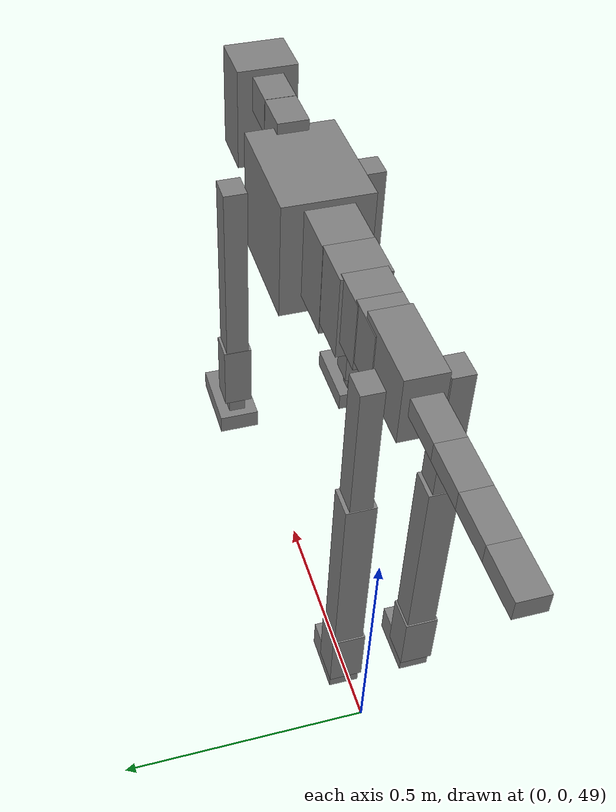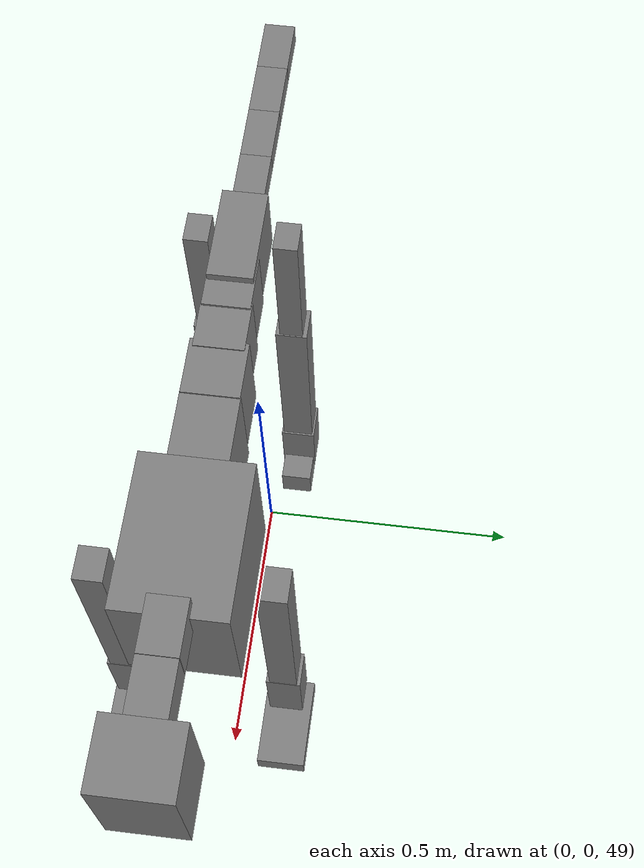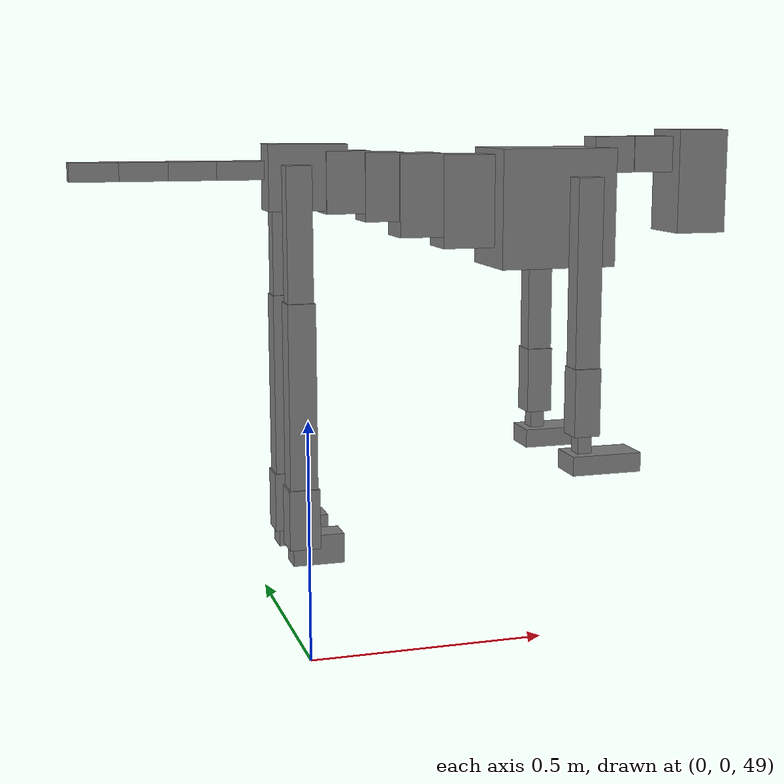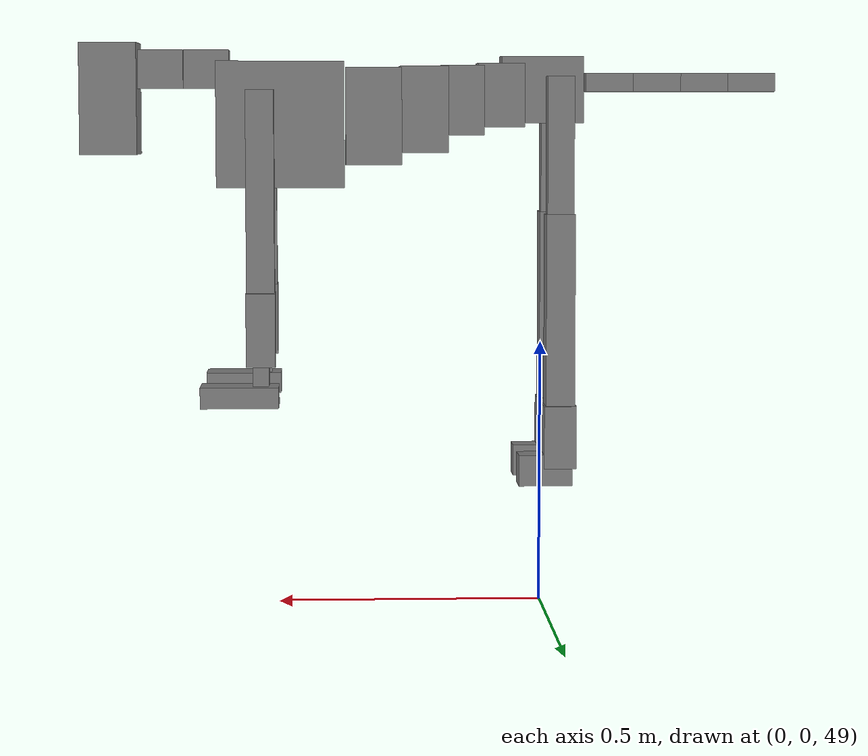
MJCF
<mujoco model="dog">

    <default>
        <joint armature="0.02" stiffness="1" damping="0.2" limited="true"/>
        <geom condim="3" friction="1 0.05 0.05" margin="0.01"/>
        <motor ctrllimited="true" ctrlrange="-1.0 1.0" forcelimited="true" gear="50"/>
    </default>

    <compiler inertiafromgeom="true" angle="radian"/>

    <option timestep="0.016" iterations="50" tolerance="1e-10" solver="Newton" jacobian="dense" cone="pyramidal"/>

    <size nconmax="20000" njmax="60000" nstack="5000000"/>
    <visual>
        <map force="0.1" zfar="30"/>
        <rgba haze="0.15 0.25 0.35 1"/>
        <quality shadowsize="2048"/>
        <global offwidth="800" offheight="800"/>
    </visual>

    <asset>
        <texture type="skybox" builtin="gradient" rgb1="0.3 0.5 0.7" rgb2="0 0 0" width="512" height="512"/>
        <texture name="texplane" type="2d" builtin="checker" rgb1=".2 .3 .4" rgb2=".1 0.15 0.2" width="512" height="512"
                 mark="cross" markrgb=".8 .8 .8"/>
        <texture name="texgeom" type="cube" builtin="flat" mark="cross" width="127" height="1278" rgb1="0.8 0.6 0.4"
                 rgb2="0.8 0.6 0.4" markrgb="1 1 1" random="0.01"/>

        <material name="matplane" reflectance="0.3" texture="texplane" texrepeat="1 1" texuniform="true"/>
        <material name="matgeom" texture="texgeom" texuniform="true" rgba="0.8 0.6 .4 1"/>
    </asset>

    <worldbody>
        <geom name="floor" pos="0 0 0" size="0 0 .25" type="plane" material="matplane" condim="3"/>

        <light directional="false" diffuse=".2 .2 .2" specular="0 0 0" pos="0 0 5" dir="0 0 -1" castshadow="false"/>
        <light mode="targetbodycom" target="torso" directional="false" diffuse=".8 .8 .8" specular="0.3 0.3 0.3"
               pos="0 0 4.0" dir="0 0 -1"/>

        <body name="root" pos="0 0 50">
            <freejoint name="root_1"/>
            <geom type="box" pos="0 0 -0.02" size="0.0774  0.0358  0.063" density="2030"/>

            <body name="spine1" pos="0.054 0 0">
                <joint name="spine1_y" axis="0 1 0" range="0 0.7" limited="true"/>
                <geom type="box" pos="0.02375 0 -0.03" size="0.04375  0.0375  0.05985" density="2030"/>

                <body name="spine2" pos="0.0612 0 0">
                    <joint name="spine2_y" axis="0 1 0" range="-0.15 0.15" limited="true"/>
                    <geom type="box" pos="0.03555  0  -0.04" size="0.04055  0.039  0.06615" density="2030"/>

                    <body name="spine3" pos="0.0730 0 0">
                        <joint name="spine3_y" axis="0 1 0" range="-0.15 0.15" limited="true"/>
                        <geom type="box" pos="0.03555  0  -0.057" size="0.04555  0.0445  0.081" density="2030"/>

                        <body name="spine4" pos="0.0780 0 0">
                            <joint name="spine4_y" axis="0 1 0" range="-0.15 0.15" limited="true"/>
                            <geom type="box" pos="0.05265  0  -0.07" size="0.05265  0.045  0.09135" density="2030"/>

                            <body name="torso" pos="0.1082 0 0">
                                <joint name="torso_y" axis="0 1 0" range="-0.15 0.15" limited="true"/>
                                <geom type="box" pos="0.11925  0  -0.085" size="0.11925  0.085  0.11745"
                                      density="2030"/>

                                <body name="neck1" pos="0.2160  0   0.0180">
                                    <joint name="neck1_y" axis="0 1 0" range="-1.2  -1" limited="true"/>
                                    <geom type="box" pos="0.0423  0  0" size="0.0423  0.03  0.036" density="2325"/>

                                    <body name="neck2" pos="0.0853  0  0">
                                        <joint name="neck2_y" axis="0 1 0" range="0.1  0" limited="true"/>
                                        <geom type="box" pos="0.0423  0  0" size="0.0423  0.03  0.036" density="2325"/>

                                        <body name="head" pos="0.0853  0  0">
                                            <joint name="head_y" axis="0 1 0" range="-0.3  -0.2" limited="true"/>
                                            <geom type="box" pos="0.0531  0  -0.055" size="0.0531  0.06  0.1044"
                                                  density="4030"/>

                                        </body>
                                    </body>
                                </body>

                                <body name="front_shoulder" pos="0.156  0   -0.0480">
                                    <joint name="front_shoulder_y" axis="0 1 0" range="-1 1.5" limited="true"/>
                                    <geom type="box" pos="0 0.13 -0.1734" size="0.0259  0.0222  0.2000" density="1158"/>
                                    <geom type="box" pos="0 -0.13 -0.1734" size="0.0259  0.0222  0.2000"
                                          density="1158"/>

                                    <body name="front_elbow" pos="0  0  -0.3468">
                                        <joint name="front_elbow_y" axis="0 1 0" range="-2 0" limited="true"/>
                                        <geom type="box" pos="0 0.13 -0.0682" size="0.0270  0.0276  0.0682"
                                              density="1081"/>
                                        <geom type="box" pos="0 -0.13 -0.0682" size="0.0270  0.0276  0.0682"
                                              density="1081"/>

                                        <body name="front_wrist" pos="0  0  -0.1364">
                                            <joint name="front_wrist_y" axis="0 1 0" range="-0.2 0" limited="true"/>
                                            <geom type="box" pos="0 0.13 -0.0256" size="0.0150  0.0167  0.0387"
                                                  density="1664"/>
                                            <geom type="box" pos="0 -0.13 -0.0256" size="0.0150  0.0167  0.0387"
                                                  density="1664"/>

                                            <body name="front_finger_end" pos="0  0  -0.0512">
                                                <joint name="front_finger_y" axis="0 1 0" range="-0.4 1"
                                                       limited="true"/>
                                                <geom type="box" pos="0.0394  0.13  -0.0044"
                                                      size="0.0723  0.0394  0.0194" density="1515"/>
                                                <geom type="box" pos="0.0394  -0.13  -0.0044"
                                                      size="0.0723  0.0394  0.0194" density="1515"/>

                                            </body>

                                        </body>
                                    </body>
                                </body>

                            </body>
                        </body>
                    </body>
                </body>
            </body>

            <body name="back_hip" pos="-0.03 0 -0.018">
                <joint name="back_hip_y" axis="0 1 0" range="-1.5 0.3" limited="true"/>
                <geom type="box" pos="0 0.07 -0.1251" size="0.0250  0.0196  0.1479" density="1154"/>
                <geom type="box" pos="0 -0.07 -0.1251" size="0.0250  0.0196  0.1479" density="1154"/>

                <body name="back_knee" pos="0  0  -0.2501">
                    <joint name="back_knee_y" axis="0 1 0" range="0 2.8" limited="true"/>
                    <geom type="box" pos="0 0.07 -0.1783" size="0.0272  0.0268  0.1938" density="1227"/>
                    <geom type="box" pos="0 -0.07 -0.1783" size="0.0272  0.0268  0.1938" density="1227"/>

                    <body name="back_ankle" pos="0  0  -0.3566">
                        <joint name="back_ankle_y" axis="0 1 0" range="-2.2 0" limited="true"/>
                        <geom type="box" pos="0 0.07 -0.0480" size="0.0304  0.0304  0.0593" density="1284"/>
                        <geom type="box" pos="0 -0.07 -0.0480" size="0.0304  0.0304  0.0593" density="1284"/>

                        <body name="back_toe_end" pos="0  0  -0.0960">
                            <joint name="back_toe_y" axis="0 1 0" range="-0.4 1" limited="true"/>
                            <geom type="box" pos="0.0275  0.07  -0.0145" size="0.0504  0.0275  0.0295" density="1515"/>
                            <geom type="box" pos="0.0275  -0.07  -0.0145" size="0.0504  0.0275  0.0295" density="1515"/>

                        </body>
                    </body>
                </body>
            </body>

            <body name="tail1" pos="-0.074 0 -0.006">
                <joint name="tail1_y" axis="0 1 0" range="-0.2 0.2" limited="true"/>
                <geom type="box" pos="-0.0536  0  0" size="0.045  0.025  0.0175" density="1587"/>

                <body name="tail2" pos="-0.09 0 0">
                    <joint name="tail2_y" axis="0 1 0" range="-0.2 0.2" limited="true"/>
                    <geom type="box" pos="-0.0536  0  0" size="0.045  0.025  0.0175" density="1587"/>

                    <body name="tail3" pos="-0.09 0 0">
                        <joint name="tail3_y" axis="0 1 0" range="-0.2 0.2" limited="true"/>
                        <geom type="box" pos="-0.0536  0  0" size="0.045  0.025  0.0175" density="1587"/>

                        <body name="tail4" pos="-0.09 0 0">
                            <joint name="tail4_y" axis="0 1 0" range="-0.2 0.2" limited="true"/>
                            <geom type="box" pos="-0.0536  0  0" size="0.045  0.025  0.0175" density="1587"/>

                        </body>
                    </body>
                </body>
            </body>
        </body>
    </worldbody>

    <actuator>
        <motor joint="spine1_y" forcerange="-150 150     "/>
        <motor joint="spine2_y" forcerange="-150 150     "/>
        <motor joint="spine3_y" forcerange="-150 150     "/>
        <motor joint="spine4_y" forcerange="-150 150     "/>
        <motor joint="torso_y" forcerange="-150 150     "/>
        <motor joint="neck1_y" forcerange="-100 100       "/>
        <motor joint="neck2_y" forcerange="-100 100       "/>
        <motor joint="head_y" forcerange="-150 150       "/>
        <motor joint="front_shoulder_y" forcerange="-130.11 117.58"/>
        <motor joint="front_elbow_y" forcerange="-103.26 197.82"/>
        <motor joint="front_wrist_y" forcerange="-62.33 70.93"/>
        <motor joint="front_finger_y" forcerange="-77.34 92.90"/>
        <motor joint="back_hip_y" forcerange="-240.79 220.45"/>
        <motor joint="back_knee_y" forcerange="-314.35 275.95"/>
        <motor joint="back_angle_y" forcerange="-181.92 204.40"/>
        <motor joint="back_toe_y" forcerange="-84.25 55.49"/>
        <motor joint="tail1_y" forcerange="-50 50     "/>
        <motor joint="tail2_y" forcerange="-50 50     "/>
        <motor joint="tail3_y" forcerange="-50 50     "/>
        <motor joint="tail4_y" forcerange="-50 50     "/>
    </actuator>
</mujoco>
